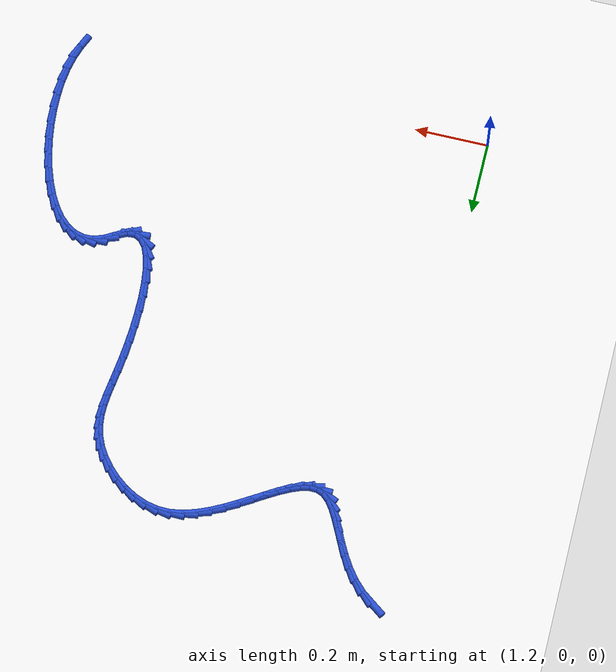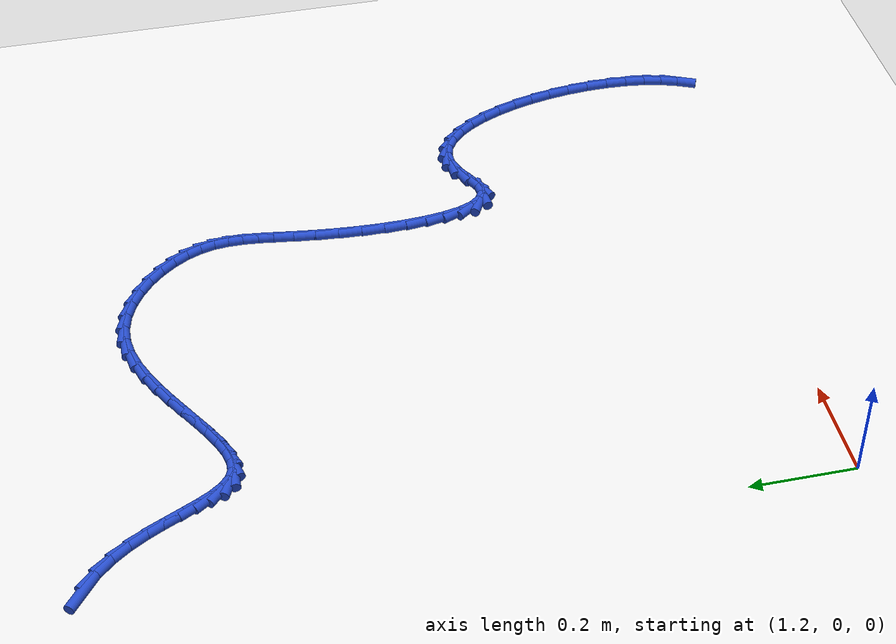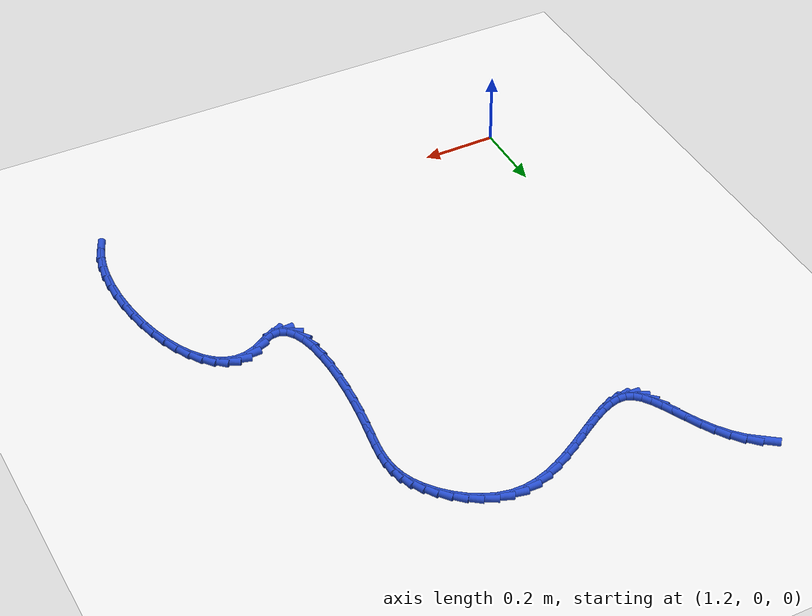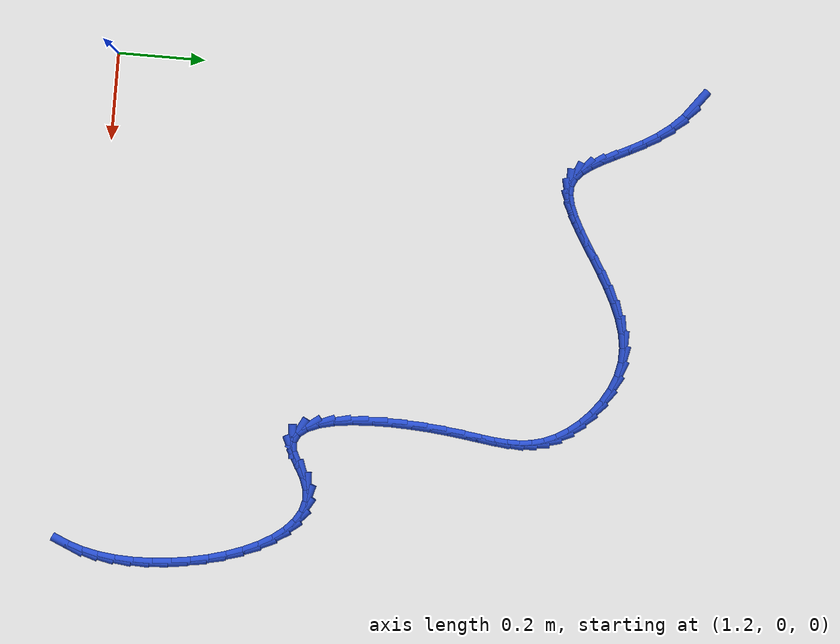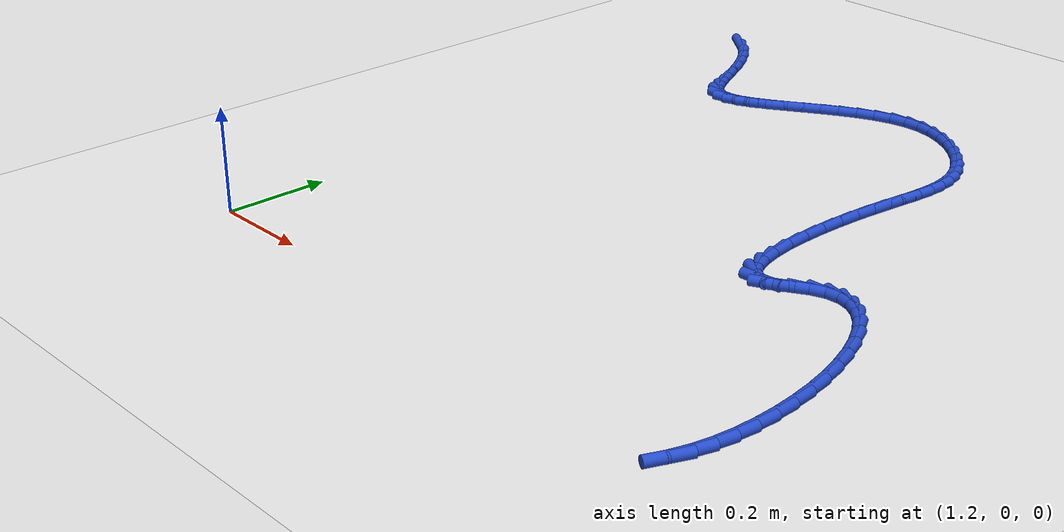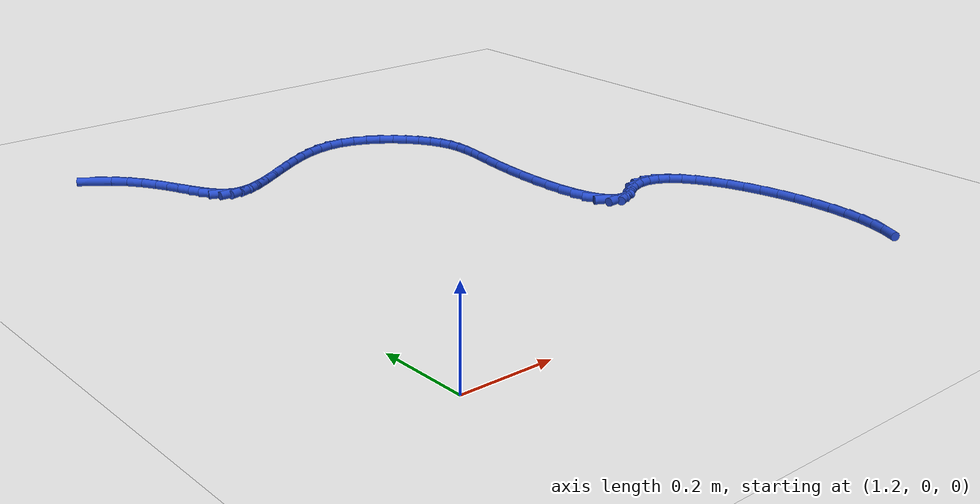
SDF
<sdf version="1.6">
 <world name="default">
  <model name="ground_plane">
   <static>1</static>
   <link name="link">
    <collision name="collision">
     <geometry><plane><normal>0 0 1</normal><size>100 100</size></plane></geometry>
     <surface><friction><ode><mu>100</mu><mu2>50</mu2></ode></friction></surface>
    </collision>
    <visual name="visual">
     <cast_shadows>0</cast_shadows>
     <geometry><plane><normal>0 0 1</normal><size>100 100</size></plane></geometry>
     <material>
      <script><uri>file://media/materials/scripts/gazebo.material</uri><name>Gazebo/WhiteGlow</name></script>
     </material>
    </visual>
   </link>
  </model>
  <model name="line">
   <link name="link_68">
    <pose>1.2101402603611515 1.3346840459422666 0.01 0 1.57 -0.6405506658462718</pose>
    <collision name="collision">
     <geometry><cylinder><radius>0.01</radius><length>0.08</length></cylinder></geometry>
    </collision>
    <visual name="visual">
     <material>
      <script><name>Gazebo/Blue</name><uri>file://media/materials/scripts/gazebo.material</uri></script>
     </material>
     <geometry><cylinder><radius>0.01</radius><length>0.08</length></cylinder></geometry>
    </visual>
   </link>
   <link name="link_69">
    <pose>1.2416861663648582 1.3111697245043037 0.01 0 1.57 -0.8005669810562018</pose>
    <collision name="collision">
     <geometry><cylinder><radius>0.01</radius><length>0.08</length></cylinder></geometry>
    </collision>
    <visual name="visual">
     <material>
      <script><name>Gazebo/Blue</name><uri>file://media/materials/scripts/gazebo.material</uri></script>
     </material>
     <geometry><cylinder><radius>0.01</radius><length>0.08</length></cylinder></geometry>
    </visual>
   </link>
   <link name="link_70">
    <pose>1.2683369347292894 1.283697917693104 0.01 0 1.57 -0.9292614443777474</pose>
    <collision name="collision">
     <geometry><cylinder><radius>0.01</radius><length>0.08</length></cylinder></geometry>
    </collision>
    <visual name="visual">
     <material>
      <script><name>Gazebo/Blue</name><uri>file://media/materials/scripts/gazebo.material</uri></script>
     </material>
     <geometry><cylinder><radius>0.01</radius><length>0.08</length></cylinder></geometry>
    </visual>
   </link>
   <link name="link_71">
    <pose>1.2908947221284324 1.2534973390527564 0.01 0 1.57 -1.0246770198170472</pose>
    <collision name="collision">
     <geometry><cylinder><radius>0.01</radius><length>0.08</length></cylinder></geometry>
    </collision>
    <visual name="visual">
     <material>
      <script><name>Gazebo/Blue</name><uri>file://media/materials/scripts/gazebo.material</uri></script>
     </material>
     <geometry><cylinder><radius>0.01</radius><length>0.08</length></cylinder></geometry>
    </visual>
   </link>
   <link name="link_72">
    <pose>1.3101616852362756 1.221796702127349 0.01 0 1.57 -1.0875208500829896</pose>
    <collision name="collision">
     <geometry><cylinder><radius>0.01</radius><length>0.08</length></cylinder></geometry>
    </collision>
    <visual name="visual">
     <material>
      <script><name>Gazebo/Blue</name><uri>file://media/materials/scripts/gazebo.material</uri></script>
     </material>
     <geometry><cylinder><radius>0.01</radius><length>0.08</length></cylinder></geometry>
    </visual>
   </link>
   <link name="link_73">
    <pose>1.3269399807268067 1.1898247204609698 0.01 0 1.57 -1.1179241420468402</pose>
    <collision name="collision">
     <geometry><cylinder><radius>0.01</radius><length>0.08</length></cylinder></geometry>
    </collision>
    <visual name="visual">
     <material>
      <script><name>Gazebo/Blue</name><uri>file://media/materials/scripts/gazebo.material</uri></script>
     </material>
     <geometry><cylinder><radius>0.01</radius><length>0.08</length></cylinder></geometry>
    </visual>
   </link>
   <link name="link_74">
    <pose>1.3420317652740137 1.158810107597707 0.01 0 1.57 -1.1129049039712045</pose>
    <collision name="collision">
     <geometry><cylinder><radius>0.01</radius><length>0.08</length></cylinder></geometry>
    </collision>
    <visual name="visual">
     <material>
      <script><name>Gazebo/Blue</name><uri>file://media/materials/scripts/gazebo.material</uri></script>
     </material>
     <geometry><cylinder><radius>0.01</radius><length>0.08</length></cylinder></geometry>
    </visual>
   </link>
   <link name="link_75">
    <pose>1.3562391955518842 1.1299815770816495 0.01 0 1.57 -1.0635026626829978</pose>
    <collision name="collision">
     <geometry><cylinder><radius>0.01</radius><length>0.08</length></cylinder></geometry>
    </collision>
    <visual name="visual">
     <material>
      <script><name>Gazebo/Blue</name><uri>file://media/materials/scripts/gazebo.material</uri></script>
     </material>
     <geometry><cylinder><radius>0.01</radius><length>0.08</length></cylinder></geometry>
    </visual>
   </link>
   <link name="link_76">
    <pose>1.3703644282344074 1.1045678424568854 0.01 0 1.57 -0.9502498864761191</pose>
    <collision name="collision">
     <geometry><cylinder><radius>0.01</radius><length>0.08</length></cylinder></geometry>
    </collision>
    <visual name="visual">
     <material>
      <script><name>Gazebo/Blue</name><uri>file://media/materials/scripts/gazebo.material</uri></script>
     </material>
     <geometry><cylinder><radius>0.01</radius><length>0.08</length></cylinder></geometry>
    </visual>
   </link>
   <link name="link_77">
    <pose>1.3852096199955704 1.0837976172675026 0.01 0 1.57 -0.73843796721582</pose>
    <collision name="collision">
     <geometry><cylinder><radius>0.01</radius><length>0.08</length></cylinder></geometry>
    </collision>
    <visual name="visual">
     <material>
      <script><name>Gazebo/Blue</name><uri>file://media/materials/scripts/gazebo.material</uri></script>
     </material>
     <geometry><cylinder><radius>0.01</radius><length>0.08</length></cylinder></geometry>
    </visual>
   </link>
   <link name="link_78">
    <pose>1.401576927509361 1.068899615057589 0.01 0 1.57 -0.39695741105109433</pose>
    <collision name="collision">
     <geometry><cylinder><radius>0.01</radius><length>0.08</length></cylinder></geometry>
    </collision>
    <visual name="visual">
     <material>
      <script><name>Gazebo/Blue</name><uri>file://media/materials/scripts/gazebo.material</uri></script>
     </material>
     <geometry><cylinder><radius>0.01</radius><length>0.08</length></cylinder></geometry>
    </visual>
   </link>
   <link name="link_79">
    <pose>1.4202539553745168 1.0610699929710747 0.01 0 1.57 -0.02797339589513108</pose>
    <collision name="collision">
     <geometry><cylinder><radius>0.01</radius><length>0.08</length></cylinder></geometry>
    </collision>
    <visual name="visual">
     <material>
      <script><name>Gazebo/Blue</name><uri>file://media/materials/scripts/gazebo.material</uri></script>
     </material>
     <geometry><cylinder><radius>0.01</radius><length>0.08</length></cylinder></geometry>
    </visual>
   </link>
   <link name="link_80">
    <pose>1.441567346755273 1.0604736294743564 0.01 0 1.57 0.23108343504771459</pose>
    <collision name="collision">
     <geometry><cylinder><radius>0.01</radius><length>0.08</length></cylinder></geometry>
    </collision>
    <visual name="visual">
     <material>
      <script><name>Gazebo/Blue</name><uri>file://media/materials/scripts/gazebo.material</uri></script>
     </material>
     <geometry><cylinder><radius>0.01</radius><length>0.08</length></cylinder></geometry>
    </visual>
   </link>
   <link name="link_81">
    <pose>1.4652993423868723 1.0660574473113065 0.01 0 1.57 0.3897947270925956</pose>
    <collision name="collision">
     <geometry><cylinder><radius>0.01</radius><length>0.08</length></cylinder></geometry>
    </collision>
    <visual name="visual">
     <material>
      <script><name>Gazebo/Blue</name><uri>file://media/materials/scripts/gazebo.material</uri></script>
     </material>
     <geometry><cylinder><radius>0.01</radius><length>0.08</length></cylinder></geometry>
    </visual>
   </link>
   <link name="link_82">
    <pose>1.491200797790045 1.0766981531510995 0.01 0 1.57 0.4825412748929228</pose>
    <collision name="collision">
     <geometry><cylinder><radius>0.01</radius><length>0.08</length></cylinder></geometry>
    </collision>
    <visual name="visual">
     <material>
      <script><name>Gazebo/Blue</name><uri>file://media/materials/scripts/gazebo.material</uri></script>
     </material>
     <geometry><cylinder><radius>0.01</radius><length>0.08</length></cylinder></geometry>
    </visual>
   </link>
   <link name="link_83">
    <pose>1.5190225684855183 1.0912724536629084 0.01 0 1.57 0.5326257153427971</pose>
    <collision name="collision">
     <geometry><cylinder><radius>0.01</radius><length>0.08</length></cylinder></geometry>
    </collision>
    <visual name="visual">
     <material>
      <script><name>Gazebo/Blue</name><uri>file://media/materials/scripts/gazebo.material</uri></script>
     </material>
     <geometry><cylinder><radius>0.01</radius><length>0.08</length></cylinder></geometry>
    </visual>
   </link>
   <link name="link_84">
    <pose>1.5485155099940222 1.1086570555159072 0.01 0 1.57 0.5527572748742934</pose>
    <collision name="collision">
     <geometry><cylinder><radius>0.01</radius><length>0.08</length></cylinder></geometry>
    </collision>
    <visual name="visual">
     <material>
      <script><name>Gazebo/Blue</name><uri>file://media/materials/scripts/gazebo.material</uri></script>
     </material>
     <geometry><cylinder><radius>0.01</radius><length>0.08</length></cylinder></geometry>
    </visual>
   </link>
   <link name="link_85">
    <pose>1.5794304778362858 1.12772866537927 0.01 0 1.57 0.549141026545829</pose>
    <collision name="collision">
     <geometry><cylinder><radius>0.01</radius><length>0.08</length></cylinder></geometry>
    </collision>
    <visual name="visual">
     <material>
      <script><name>Gazebo/Blue</name><uri>file://media/materials/scripts/gazebo.material</uri></script>
     </material>
     <geometry><cylinder><radius>0.01</radius><length>0.08</length></cylinder></geometry>
    </visual>
   </link>
   <link name="link_86">
    <pose>1.611518327533038 1.1473639899221701 0.01 0 1.57 0.5239734994635522</pose>
    <collision name="collision">
     <geometry><cylinder><radius>0.01</radius><length>0.08</length></cylinder></geometry>
    </collision>
    <visual name="visual">
     <material>
      <script><name>Gazebo/Blue</name><uri>file://media/materials/scripts/gazebo.material</uri></script>
     </material>
     <geometry><cylinder><radius>0.01</radius><length>0.08</length></cylinder></geometry>
    </visual>
   </link>
   <link name="link_87">
    <pose>1.6445299146050079 1.1664397358137824 0.01 0 1.57 0.47661880169860665</pose>
    <collision name="collision">
     <geometry><cylinder><radius>0.01</radius><length>0.08</length></cylinder></geometry>
    </collision>
    <visual name="visual">
     <material>
      <script><name>Gazebo/Blue</name><uri>file://media/materials/scripts/gazebo.material</uri></script>
     </material>
     <geometry><cylinder><radius>0.01</radius><length>0.08</length></cylinder></geometry>
    </visual>
   </link>
   <link name="link_88">
    <pose>1.678216094572924 1.1838326097232796 0.01 0 1.57 0.4040850909547028</pose>
    <collision name="collision">
     <geometry><cylinder><radius>0.01</radius><length>0.08</length></cylinder></geometry>
    </collision>
    <visual name="visual">
     <material>
      <script><name>Gazebo/Blue</name><uri>file://media/materials/scripts/gazebo.material</uri></script>
     </material>
     <geometry><cylinder><radius>0.01</radius><length>0.08</length></cylinder></geometry>
    </visual>
   </link>
   <link name="link_89">
    <pose>1.7123277229575158 1.1984193183198362 0.01 0 1.57 0.30135027437881273</pose>
    <collision name="collision">
     <geometry><cylinder><radius>0.01</radius><length>0.08</length></cylinder></geometry>
    </collision>
    <visual name="visual">
     <material>
      <script><name>Gazebo/Blue</name><uri>file://media/materials/scripts/gazebo.material</uri></script>
     </material>
     <geometry><cylinder><radius>0.01</radius><length>0.08</length></cylinder></geometry>
    </visual>
   </link>
   <link name="link_90">
    <pose>1.746615655279513 1.209076568272626 0.01 0 1.57 0.1623600752626817</pose>
    <collision name="collision">
     <geometry><cylinder><radius>0.01</radius><length>0.08</length></cylinder></geometry>
    </collision>
    <visual name="visual">
     <material>
      <script><name>Gazebo/Blue</name><uri>file://media/materials/scripts/gazebo.material</uri></script>
     </material>
     <geometry><cylinder><radius>0.01</radius><length>0.08</length></cylinder></geometry>
    </visual>
   </link>
   <link name="link_91">
    <pose>1.780830747059643 1.2146810662508227 0.01 0 1.57 -0.01614139880914031</pose>
    <collision name="collision">
     <geometry><cylinder><radius>0.01</radius><length>0.08</length></cylinder></geometry>
    </collision>
    <visual name="visual">
     <material>
      <script><name>Gazebo/Blue</name><uri>file://media/materials/scripts/gazebo.material</uri></script>
     </material>
     <geometry><cylinder><radius>0.01</radius><length>0.08</length></cylinder></geometry>
    </visual>
   </link>
   <link name="link_92">
    <pose>1.8147198156599853 1.214134001766855 0.01 0 1.57 -0.20642447132176978</pose>
    <collision name="collision">
     <geometry><cylinder><radius>0.01</radius><length>0.08</length></cylinder></geometry>
    </collision>
    <visual name="visual">
     <material>
      <script><name>Gazebo/Blue</name><uri>file://media/materials/scripts/gazebo.material</uri></script>
     </material>
     <geometry><cylinder><radius>0.01</radius><length>0.08</length></cylinder></geometry>
    </visual>
   </link>
   <link name="link_93">
    <pose>1.8478892302583443 1.2071880838443911 0.01 0 1.57 -0.3747490998510762</pose>
    <collision name="collision">
     <geometry><cylinder><radius>0.01</radius><length>0.08</length></cylinder></geometry>
    </collision>
    <visual name="visual">
     <material>
      <script><name>Gazebo/Blue</name><uri>file://media/materials/scripts/gazebo.material</uri></script>
     </material>
     <geometry><cylinder><radius>0.01</radius><length>0.08</length></cylinder></geometry>
    </visual>
   </link>
   <link name="link_94">
    <pose>1.8797719409291795 1.1946474395150066 0.01 0 1.57 -0.5219779576328529</pose>
    <collision name="collision">
     <geometry><cylinder><radius>0.01</radius><length>0.08</length></cylinder></geometry>
    </collision>
    <visual name="visual">
     <material>
      <script><name>Gazebo/Blue</name><uri>file://media/materials/scripts/gazebo.material</uri></script>
     </material>
     <geometry><cylinder><radius>0.01</radius><length>0.08</length></cylinder></geometry>
    </visual>
   </link>
   <link name="link_95">
    <pose>1.9097901733487777 1.1773812164749267 0.01 0 1.57 -0.6536502253165728</pose>
    <collision name="collision">
     <geometry><cylinder><radius>0.01</radius><length>0.08</length></cylinder></geometry>
    </collision>
    <visual name="visual">
     <material>
      <script><name>Gazebo/Blue</name><uri>file://media/materials/scripts/gazebo.material</uri></script>
     </material>
     <geometry><cylinder><radius>0.01</radius><length>0.08</length></cylinder></geometry>
    </visual>
   </link>
   <link name="link_96">
    <pose>1.9373661531934245 1.1562585624203776 0.01 0 1.57 -0.7762335702237848</pose>
    <collision name="collision">
     <geometry><cylinder><radius>0.01</radius><length>0.08</length></cylinder></geometry>
    </collision>
    <visual name="visual">
     <material>
      <script><name>Gazebo/Blue</name><uri>file://media/materials/scripts/gazebo.material</uri></script>
     </material>
     <geometry><cylinder><radius>0.01</radius><length>0.08</length></cylinder></geometry>
    </visual>
   </link>
   <link name="link_97">
    <pose>1.961922106139407 1.1321486250475856 0.01 0 1.57 -0.8966207270291379</pose>
    <collision name="collision">
     <geometry><cylinder><radius>0.01</radius><length>0.08</length></cylinder></geometry>
    </collision>
    <visual name="visual">
     <material>
      <script><name>Gazebo/Blue</name><uri>file://media/materials/scripts/gazebo.material</uri></script>
     </material>
     <geometry><cylinder><radius>0.01</radius><length>0.08</length></cylinder></geometry>
    </visual>
   </link>
   <link name="link_98">
    <pose>1.9828802578630103 1.1059205520527757 0.01 0 1.57 -1.0224844096397445</pose>
    <collision name="collision">
     <geometry><cylinder><radius>0.01</radius><length>0.08</length></cylinder></geometry>
    </collision>
    <visual name="visual">
     <material>
      <script><name>Gazebo/Blue</name><uri>file://media/materials/scripts/gazebo.material</uri></script>
     </material>
     <geometry><cylinder><radius>0.01</radius><length>0.08</length></cylinder></geometry>
    </visual>
   </link>
   <link name="link_99">
    <pose>1.9996628340405214 1.078443491132174 0.01 0 1.57 -1.1630350039063841</pose>
    <collision name="collision">
     <geometry><cylinder><radius>0.01</radius><length>0.08</length></cylinder></geometry>
    </collision>
    <visual name="visual">
     <material>
      <script><name>Gazebo/Blue</name><uri>file://media/materials/scripts/gazebo.material</uri></script>
     </material>
     <geometry><cylinder><radius>0.01</radius><length>0.08</length></cylinder></geometry>
    </visual>
   </link>
   <link name="link_100">
    <pose>2.011699468713053 1.0505791186858173 0.01 0 1.57 -1.3174883859484239</pose>
    <collision name="collision">
     <geometry><cylinder><radius>0.01</radius><length>0.08</length></cylinder></geometry>
    </collision>
    <visual name="visual">
     <material>
      <script><name>Gazebo/Blue</name><uri>file://media/materials/scripts/gazebo.material</uri></script>
     </material>
     <geometry><cylinder><radius>0.01</radius><length>0.08</length></cylinder></geometry>
    </visual>
   </link>
   <link name="link_101">
    <pose>2.0189206316462815 1.022684020972084 0.01 0 1.57 -1.4603954697936792</pose>
    <collision name="collision">
     <geometry><cylinder><radius>0.01</radius><length>0.08</length></cylinder></geometry>
    </collision>
    <visual name="visual">
     <material>
      <script><name>Gazebo/Blue</name><uri>file://media/materials/scripts/gazebo.material</uri></script>
     </material>
     <geometry><cylinder><radius>0.01</radius><length>0.08</length></cylinder></geometry>
    </visual>
   </link>
   <link name="link_102">
    <pose>2.0220673389502752 0.9942973526089235 0.01 0 1.57 1.5669598529727127</pose>
    <collision name="collision">
     <geometry><cylinder><radius>0.01</radius><length>0.08</length></cylinder></geometry>
    </collision>
    <visual name="visual">
     <material>
      <script><name>Gazebo/Blue</name><uri>file://media/materials/scripts/gazebo.material</uri></script>
     </material>
     <geometry><cylinder><radius>0.01</radius><length>0.08</length></cylinder></geometry>
    </visual>
   </link>
   <link name="link_103">
    <pose>2.0219544938933 0.9648837534115872 0.01 0 1.57 1.4884191469478605</pose>
    <collision name="collision">
     <geometry><cylinder><radius>0.01</radius><length>0.08</length></cylinder></geometry>
    </collision>
    <visual name="visual">
     <material>
      <script><name>Gazebo/Blue</name><uri>file://media/materials/scripts/gazebo.material</uri></script>
     </material>
     <geometry><cylinder><radius>0.01</radius><length>0.08</length></cylinder></geometry>
    </visual>
   </link>
   <link name="link_104">
    <pose>2.0193969997436216 0.9339078631953256 0.01 0 1.57 1.4448624014761926</pose>
    <collision name="collision">
     <geometry><cylinder><radius>0.01</radius><length>0.08</length></cylinder></geometry>
    </collision>
    <visual name="visual">
     <material>
      <script><name>Gazebo/Blue</name><uri>file://media/materials/scripts/gazebo.material</uri></script>
     </material>
     <geometry><cylinder><radius>0.01</radius><length>0.08</length></cylinder></geometry>
    </visual>
   </link>
   <link name="link_105">
    <pose>2.0152097597695064 0.9008343217753908 0.01 0 1.57 1.4316134473437536</pose>
    <collision name="collision">
     <geometry><cylinder><radius>0.01</radius><length>0.08</length></cylinder></geometry>
    </collision>
    <visual name="visual">
     <material>
      <script><name>Gazebo/Blue</name><uri>file://media/materials/scripts/gazebo.material</uri></script>
     </material>
     <geometry><cylinder><radius>0.01</radius><length>0.08</length></cylinder></geometry>
    </visual>
   </link>
   <link name="link_106">
    <pose>2.0102076772392192 0.8651277689670333 0.01 0 1.57 1.44282981299136</pose>
    <collision name="collision">
     <geometry><cylinder><radius>0.01</radius><length>0.08</length></cylinder></geometry>
    </collision>
    <visual name="visual">
     <material>
      <script><name>Gazebo/Blue</name><uri>file://media/materials/scripts/gazebo.material</uri></script>
     </material>
     <geometry><cylinder><radius>0.01</radius><length>0.08</length></cylinder></geometry>
    </visual>
   </link>
   <link name="link_107">
    <pose>2.005205655421028 0.8262528445855044 0.01 0 1.57 1.4711677305586828</pose>
    <collision name="collision">
     <geometry><cylinder><radius>0.01</radius><length>0.08</length></cylinder></geometry>
    </collision>
    <visual name="visual">
     <material>
      <script><name>Gazebo/Blue</name><uri>file://media/materials/scripts/gazebo.material</uri></script>
     </material>
     <geometry><cylinder><radius>0.01</radius><length>0.08</length></cylinder></geometry>
    </visual>
   </link>
   <link name="link_108">
    <pose>2.00097020180222 0.7838811662335003 0.01 0 1.57 1.503710105039452</pose>
    <collision name="collision">
     <geometry><cylinder><radius>0.01</radius><length>0.08</length></cylinder></geometry>
    </collision>
    <visual name="visual">
     <material>
      <script><name>Gazebo/Blue</name><uri>file://media/materials/scripts/gazebo.material</uri></script>
     </material>
     <geometry><cylinder><radius>0.01</radius><length>0.08</length></cylinder></geometry>
    </visual>
   </link>
   <link name="link_109">
    <pose>1.9979559805577487 0.7390180346884432 0.01 0 1.57 1.538900447132347</pose>
    <collision name="collision">
     <geometry><cylinder><radius>0.01</radius><length>0.08</length></cylinder></geometry>
    </collision>
    <visual name="visual">
     <material>
      <script><name>Gazebo/Blue</name><uri>file://media/materials/scripts/gazebo.material</uri></script>
     </material>
     <geometry><cylinder><radius>0.01</radius><length>0.08</length></cylinder></geometry>
    </visual>
   </link>
   <link name="link_110">
    <pose>1.9964940014393946 0.6931975926722241 0.01 0 1.57 -1.5614919765250201</pose>
    <collision name="collision">
     <geometry><cylinder><radius>0.01</radius><length>0.08</length></cylinder></geometry>
    </collision>
    <visual name="visual">
     <material>
      <script><name>Gazebo/Blue</name><uri>file://media/materials/scripts/gazebo.material</uri></script>
     </material>
     <geometry><cylinder><radius>0.01</radius><length>0.08</length></cylinder></geometry>
    </visual>
   </link>
   <link name="link_111">
    <pose>1.9969149636211978 0.6479553111773473 0.01 0 1.57 -1.5097850766238705</pose>
    <collision name="collision">
     <geometry><cylinder><radius>0.01</radius><length>0.08</length></cylinder></geometry>
    </collision>
    <visual name="visual">
     <material>
      <script><name>Gazebo/Blue</name><uri>file://media/materials/scripts/gazebo.material</uri></script>
     </material>
     <geometry><cylinder><radius>0.01</radius><length>0.08</length></cylinder></geometry>
    </visual>
   </link>
   <link name="link_112">
    <pose>1.999549566277198 0.604826661196318 0.01 0 1.57 -1.4403607287152502</pose>
    <collision name="collision">
     <geometry><cylinder><radius>0.01</radius><length>0.08</length></cylinder></geometry>
    </collision>
    <visual name="visual">
     <material>
      <script><name>Gazebo/Blue</name><uri>file://media/materials/scripts/gazebo.material</uri></script>
     </material>
     <geometry><cylinder><radius>0.01</radius><length>0.08</length></cylinder></geometry>
    </visual>
   </link>
   <link name="link_113">
    <pose>2.004728508581434 0.5653471137216401 0.01 0 1.57 -1.3401318685472556</pose>
    <collision name="collision">
     <geometry><cylinder><radius>0.01</radius><length>0.08</length></cylinder></geometry>
    </collision>
    <visual name="visual">
     <material>
      <script><name>Gazebo/Blue</name><uri>file://media/materials/scripts/gazebo.material</uri></script>
     </material>
     <geometry><cylinder><radius>0.01</radius><length>0.08</length></cylinder></geometry>
    </visual>
   </link>
   <link name="link_114">
    <pose>2.0127824897079454 0.5310521397458199 0.01 0 1.57 -1.1831281082714542</pose>
    <collision name="collision">
     <geometry><cylinder><radius>0.01</radius><length>0.08</length></cylinder></geometry>
    </collision>
    <visual name="visual">
     <material>
      <script><name>Gazebo/Blue</name><uri>file://media/materials/scripts/gazebo.material</uri></script>
     </material>
     <geometry><cylinder><radius>0.01</radius><length>0.08</length></cylinder></geometry>
    </visual>
   </link>
   <link name="link_115">
    <pose>2.0240422088307723 0.5034772102613617 0.01 0 1.57 -0.9172156528036578</pose>
    <collision name="collision">
     <geometry><cylinder><radius>0.01</radius><length>0.08</length></cylinder></geometry>
    </collision>
    <visual name="visual">
     <material>
      <script><name>Gazebo/Blue</name><uri>file://media/materials/scripts/gazebo.material</uri></script>
     </material>
     <geometry><cylinder><radius>0.01</radius><length>0.08</length></cylinder></geometry>
    </visual>
   </link>
   <link name="link_116">
    <pose>2.0388383651239543 0.48415779626077043 0.01 0 1.57 -0.47204699109633597</pose>
    <collision name="collision">
     <geometry><cylinder><radius>0.01</radius><length>0.08</length></cylinder></geometry>
    </collision>
    <visual name="visual">
     <material>
      <script><name>Gazebo/Blue</name><uri>file://media/materials/scripts/gazebo.material</uri></script>
     </material>
     <geometry><cylinder><radius>0.01</radius><length>0.08</length></cylinder></geometry>
    </visual>
   </link>
   <link name="link_117">
    <pose>2.057501657761531 0.4746293687365509 0.01 0 1.57 0.07848852390758916</pose>
    <collision name="collision">
     <geometry><cylinder><radius>0.01</radius><length>0.08</length></cylinder></geometry>
    </collision>
    <visual name="visual">
     <material>
      <script><name>Gazebo/Blue</name><uri>file://media/materials/scripts/gazebo.material</uri></script>
     </material>
     <geometry><cylinder><radius>0.01</radius><length>0.08</length></cylinder></geometry>
    </visual>
   </link>
   <link name="link_118">
    <pose>2.080362785917541 0.4764273986812085 0.01 0 1.57 0.4550001029018141</pose>
    <collision name="collision">
     <geometry><cylinder><radius>0.01</radius><length>0.08</length></cylinder></geometry>
    </collision>
    <visual name="visual">
     <material>
      <script><name>Gazebo/Blue</name><uri>file://media/materials/scripts/gazebo.material</uri></script>
     </material>
     <geometry><cylinder><radius>0.01</radius><length>0.08</length></cylinder></geometry>
    </visual>
   </link>
   <link name="link_119">
    <pose>2.1073821424444987 0.48964626453383026 0.01 0 1.57 0.5178175570980424</pose>
    <collision name="collision">
     <geometry><cylinder><radius>0.01</radius><length>0.08</length></cylinder></geometry>
    </collision>
    <visual name="visual">
     <material>
      <script><name>Gazebo/Blue</name><uri>file://media/materials/scripts/gazebo.material</uri></script>
     </material>
     <geometry><cylinder><radius>0.01</radius><length>0.08</length></cylinder></geometry>
    </visual>
   </link>
   <link name="link_120">
    <pose>2.1364141962959047 0.5061848831047718 0.01 0 1.57 0.33820205596272357</pose>
    <collision name="collision">
     <geometry><cylinder><radius>0.01</radius><length>0.08</length></cylinder></geometry>
    </collision>
    <visual name="visual">
     <material>
      <script><name>Gazebo/Blue</name><uri>file://media/materials/scripts/gazebo.material</uri></script>
     </material>
     <geometry><cylinder><radius>0.01</radius><length>0.08</length></cylinder></geometry>
    </visual>
   </link>
   <link name="link_121">
    <pose>2.164837033884822 0.5161816282841638 0.01 0 1.57 0.04251007363470648</pose>
    <collision name="collision">
     <geometry><cylinder><radius>0.01</radius><length>0.08</length></cylinder></geometry>
    </collision>
    <visual name="visual">
     <material>
      <script><name>Gazebo/Blue</name><uri>file://media/materials/scripts/gazebo.material</uri></script>
     </material>
     <geometry><cylinder><radius>0.01</radius><length>0.08</length></cylinder></geometry>
    </visual>
   </link>
   <link name="link_122">
    <pose>2.1918097827344636 0.5173289330077208 0.01 0 1.57 -0.26574786408252726</pose>
    <collision name="collision">
     <geometry><cylinder><radius>0.01</radius><length>0.08</length></cylinder></geometry>
    </collision>
    <visual name="visual">
     <material>
      <script><name>Gazebo/Blue</name><uri>file://media/materials/scripts/gazebo.material</uri></script>
     </material>
     <geometry><cylinder><radius>0.01</radius><length>0.08</length></cylinder></geometry>
    </visual>
   </link>
   <link name="link_123">
    <pose>2.217220883037553 0.510412395882137 0.01 0 1.57 -0.5386037691368735</pose>
    <collision name="collision">
     <geometry><cylinder><radius>0.01</radius><length>0.08</length></cylinder></geometry>
    </collision>
    <visual name="visual">
     <material>
      <script><name>Gazebo/Blue</name><uri>file://media/materials/scripts/gazebo.material</uri></script>
     </material>
     <geometry><cylinder><radius>0.01</radius><length>0.08</length></cylinder></geometry>
    </visual>
   </link>
   <link name="link_124">
    <pose>2.240960965575219 0.4962269062519739 0.01 0 1.57 -0.7549016218691501</pose>
    <collision name="collision">
     <geometry><cylinder><radius>0.01</radius><length>0.08</length></cylinder></geometry>
    </collision>
    <visual name="visual">
     <material>
      <script><name>Gazebo/Blue</name><uri>file://media/materials/scripts/gazebo.material</uri></script>
     </material>
     <geometry><cylinder><radius>0.01</radius><length>0.08</length></cylinder></geometry>
    </visual>
   </link>
   <link name="link_125">
    <pose>2.262920661128586 0.47556735346179213 0.01 0 1.57 -0.9196634410284316</pose>
    <collision name="collision">
     <geometry><cylinder><radius>0.01</radius><length>0.08</length></cylinder></geometry>
    </collision>
    <visual name="visual">
     <material>
      <script><name>Gazebo/Blue</name><uri>file://media/materials/scripts/gazebo.material</uri></script>
     </material>
     <geometry><cylinder><radius>0.01</radius><length>0.08</length></cylinder></geometry>
    </visual>
   </link>
   <link name="link_126">
    <pose>2.2829906004787777 0.4492286268561519 0.01 0 1.57 -1.0461364831870286</pose>
    <collision name="collision">
     <geometry><cylinder><radius>0.01</radius><length>0.08</length></cylinder></geometry>
    </collision>
    <visual name="visual">
     <material>
      <script><name>Gazebo/Blue</name><uri>file://media/materials/scripts/gazebo.material</uri></script>
     </material>
     <geometry><cylinder><radius>0.01</radius><length>0.08</length></cylinder></geometry>
    </visual>
   </link>
   <link name="link_127">
    <pose>2.3010614144069197 0.4180056157796146 0.01 0 1.57 -1.1462543039838122</pose>
    <collision name="collision">
     <geometry><cylinder><radius>0.01</radius><length>0.08</length></cylinder></geometry>
    </collision>
    <visual name="visual">
     <material>
      <script><name>Gazebo/Blue</name><uri>file://media/materials/scripts/gazebo.material</uri></script>
     </material>
     <geometry><cylinder><radius>0.01</radius><length>0.08</length></cylinder></geometry>
    </visual>
   </link>
   <link name="link_128">
    <pose>2.317023733694137 0.382693209576741 0.01 0 1.57 -1.2287772527493321</pose>
    <collision name="collision">
     <geometry><cylinder><radius>0.01</radius><length>0.08</length></cylinder></geometry>
    </collision>
    <visual name="visual">
     <material>
      <script><name>Gazebo/Blue</name><uri>file://media/materials/scripts/gazebo.material</uri></script>
     </material>
     <geometry><cylinder><radius>0.01</radius><length>0.08</length></cylinder></geometry>
    </visual>
   </link>
   <link name="link_129">
    <pose>2.3307681891215553 0.3440862975920917 0.01 0 1.57 -1.2998778826409028</pose>
    <collision name="collision">
     <geometry><cylinder><radius>0.01</radius><length>0.08</length></cylinder></geometry>
    </collision>
    <visual name="visual">
     <material>
      <script><name>Gazebo/Blue</name><uri>file://media/materials/scripts/gazebo.material</uri></script>
     </material>
     <geometry><cylinder><radius>0.01</radius><length>0.08</length></cylinder></geometry>
    </visual>
   </link>
   <link name="link_130">
    <pose>2.3421854114703 0.3029797691702275 0.01 0 1.57 -1.3640221240781445</pose>
    <collision name="collision">
     <geometry><cylinder><radius>0.01</radius><length>0.08</length></cylinder></geometry>
    </collision>
    <visual name="visual">
     <material>
      <script><name>Gazebo/Blue</name><uri>file://media/materials/scripts/gazebo.material</uri></script>
     </material>
     <geometry><cylinder><radius>0.01</radius><length>0.08</length></cylinder></geometry>
    </visual>
   </link>
   <link name="link_131">
    <pose>2.3511660315214953 0.2601685136557083 0.01 0 1.57 -1.4246704291561612</pose>
    <collision name="collision">
     <geometry><cylinder><radius>0.01</radius><length>0.08</length></cylinder></geometry>
    </collision>
    <visual name="visual">
     <material>
      <script><name>Gazebo/Blue</name><uri>file://media/materials/scripts/gazebo.material</uri></script>
     </material>
     <geometry><cylinder><radius>0.01</radius><length>0.08</length></cylinder></geometry>
    </visual>
   </link>
   <link name="link_132">
    <pose>2.357600680056267 0.21644742039309645 0.01 0 1.57 -1.484794366303108</pose>
    <collision name="collision">
     <geometry><cylinder><radius>0.01</radius><length>0.08</length></cylinder></geometry>
    </collision>
    <visual name="visual">
     <material>
      <script><name>Gazebo/Blue</name><uri>file://media/materials/scripts/gazebo.material</uri></script>
     </material>
     <geometry><cylinder><radius>0.01</radius><length>0.08</length></cylinder></geometry>
    </visual>
   </link>
   <link name="link_133">
    <pose>2.3613799878557398 0.17261137872695195 0.01 0 1.57 -1.547290705076328</pose>
    <collision name="collision">
     <geometry><cylinder><radius>0.01</radius><length>0.08</length></cylinder></geometry>
    </collision>
    <visual name="visual">
     <material>
      <script><name>Gazebo/Blue</name><uri>file://media/materials/scripts/gazebo.material</uri></script>
     </material>
     <geometry><cylinder><radius>0.01</radius><length>0.08</length></cylinder></geometry>
    </visual>
   </link>
   <link name="link_134">
    <pose>2.3623945857010393 0.12945527800183554 0.01 0 1.57 1.5262139715799323</pose>
    <collision name="collision">
     <geometry><cylinder><radius>0.01</radius><length>0.08</length></cylinder></geometry>
    </collision>
    <visual name="visual">
     <material>
      <script><name>Gazebo/Blue</name><uri>file://media/materials/scripts/gazebo.material</uri></script>
     </material>
     <geometry><cylinder><radius>0.01</radius><length>0.08</length></cylinder></geometry>
    </visual>
   </link>
   <link name="link_135">
    <pose>2.36053510437329 0.08777400756230724 0.01 0 1.57 1.4485282998723876</pose>
    <collision name="collision">
     <geometry><cylinder><radius>0.01</radius><length>0.08</length></cylinder></geometry>
    </collision>
    <visual name="visual">
     <material>
      <script><name>Gazebo/Blue</name><uri>file://media/materials/scripts/gazebo.material</uri></script>
     </material>
     <geometry><cylinder><radius>0.01</radius><length>0.08</length></cylinder></geometry>
    </visual>
   </link>
   <link name="link_136">
    <pose>2.355692174653617 0.0483624567529293 0.01 0 1.57 1.3573596295626673</pose>
    <collision name="collision">
     <geometry><cylinder><radius>0.01</radius><length>0.08</length></cylinder></geometry>
    </collision>
    <visual name="visual">
     <material>
      <script><name>Gazebo/Blue</name><uri>file://media/materials/scripts/gazebo.material</uri></script>
     </material>
     <geometry><cylinder><radius>0.01</radius><length>0.08</length></cylinder></geometry>
    </visual>
   </link>
   <link name="link_137">
    <pose>2.347791241560116 0.011908599574727997 0.01 0 1.57 1.258711262297092</pose>
    <collision name="collision">
     <geometry><cylinder><radius>0.01</radius><length>0.08</length></cylinder></geometry>
    </collision>
    <visual name="visual">
     <material>
      <script><name>Gazebo/Blue</name><uri>file://media/materials/scripts/gazebo.material</uri></script>
     </material>
     <geometry><cylinder><radius>0.01</radius><length>0.08</length></cylinder></geometry>
    </visual>
   </link>
   <link name="link_138">
    <pose>2.336983111451516 -0.021591679968055236 0.01 0 1.57 1.1587063367646737</pose>
    <collision name="collision">
     <geometry><cylinder><radius>0.01</radius><length>0.08</length></cylinder></geometry>
    </collision>
    <visual name="visual">
     <material>
      <script><name>Gazebo/Blue</name><uri>file://media/materials/scripts/gazebo.material</uri></script>
     </material>
     <geometry><cylinder><radius>0.01</radius><length>0.08</length></cylinder></geometry>
    </visual>
   </link>
  </model>
 </world>
</sdf>
